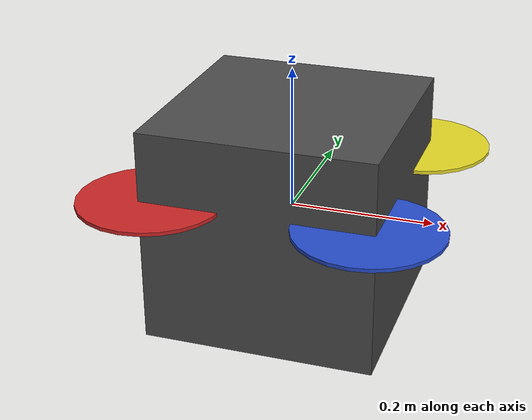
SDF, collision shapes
<?xml version='1.0'?>
<sdf version='1.6'>
  <model name='amov_solo'>
    <link name='base_link'>
      <pose>0 0 0 0 0 0</pose>
      <inertial>
        <pose>0 0 0 0 0 0</pose>
        <mass>1.2</mass>
        <inertia>
          <ixx>0.011</ixx>
          <ixy>0</ixy>
          <ixz>0</ixz>
          <iyy>0.011</iyy>
          <iyz>0</iyz>
          <izz>0.021</izz>
        </inertia>
      </inertial>
      <collision name='base_link_collision'>
        <pose>0 0 0 0 0 0</pose>
        <geometry>
          <box>
            <size>0.32 0.32 0.3</size>
          </box>
        </geometry>
        <surface>
          <contact>
            <ode>
              <min_depth>0.001</min_depth>
              <max_vel>0</max_vel>
            </ode>
          </contact>
          <friction>
            <ode/>
          </friction>
        </surface>
      </collision>
      <visual name='base_link_visual'>
	    <pose>0 0 0 0 0 0</pose>
        <geometry>
          <mesh>
	          <scale>1 1 1</scale>
            <uri>model://amov_solo/meshes/amov_solo.stl</uri>
          </mesh>
        </geometry>
        <material>
          <script>
            <name>Gazebo/DarkGrey</name>
          </script>
        </material>
      </visual>
      <gravity>1</gravity>
      <velocity_decay/>
      <self_collide>0</self_collide>
    </link>
    <link name='imu_link'>
      <pose>0 0 0 0 0 0</pose>
      <inertial>
        <pose>0 0 0 0 0 0</pose>
        <mass>0.015</mass>
        <inertia>
          <ixx>1e-05</ixx>
          <ixy>0</ixy>
          <ixz>0</ixz>
          <iyy>1e-05</iyy>
          <iyz>0</iyz>
          <izz>1e-05</izz>
        </inertia>
      </inertial>
    </link>
    <joint name='imu_joint' type='revolute'>
      <child>imu_link</child>
      <parent>base_link</parent>
      <axis>
        <xyz>1 0 0</xyz>
        <limit>
          <lower>0</lower>
          <upper>0</upper>
          <effort>0</effort>
          <velocity>0</velocity>
        </limit>
        <dynamics>
          <spring_reference>0</spring_reference>
          <spring_stiffness>0</spring_stiffness>
        </dynamics>
        <use_parent_model_frame>1</use_parent_model_frame>
      </axis>
    </joint>
    <!-- P300 rotors -->
    <link name='rotor_0'>
      <pose>0.14745 -0.14525 0.051 0 -0 0</pose>
      <inertial>
        <pose>0 0 0 0 -0 0</pose>
        <mass>0.01</mass>
        <inertia>
          <ixx>1e-06</ixx>
          <ixy>0</ixy>
          <ixz>0</ixz>
          <iyy>2e-04</iyy>
          <iyz>0</iyz>
          <izz>2e-04</izz>
        </inertia>
      </inertial>
      <collision name='rotor_0_collision'>
        <pose>0 0 0 0 0 0</pose>
        <geometry>
          <cylinder>
            <length>0.005</length>
            <radius>0.1</radius>
          </cylinder>
        </geometry>
        <surface>
          <contact>
            <ode/>
          </contact>
          <friction>
            <ode/>
          </friction>
        </surface>
      </collision>
      <visual name='rotor_0_visual'>
        <pose>-0.14745 -0.14525 -0.051 0 0 0</pose>
        <geometry>
          <mesh>
            <scale>1 1 1</scale>
            <uri>model://amov_solo/meshes/prop_ccw.stl</uri>
          </mesh>
        </geometry>
        <material>
          <script>
            <name>Gazebo/Blue</name>
            <uri>file://media/materials/scripts/gazebo.material</uri>
          </script>
        </material>
      </visual>
      <gravity>1</gravity>
      <velocity_decay/>
      <self_collide>0</self_collide>
    </link>
    <joint name='rotor_0_joint' type='revolute'>
      <child>rotor_0</child>
      <parent>base_link</parent>
      <axis>
        <xyz>0 0 1</xyz>
        <limit>
          <lower>-1e+16</lower>
          <upper>1e+16</upper>
        </limit>
        <dynamics>
          <damping>0.004</damping>
        </dynamics>
        <use_parent_model_frame>1</use_parent_model_frame>
      </axis>
      <physics>
        <ode>
          <implicit_spring_damper>1</implicit_spring_damper>
        </ode>
      </physics>
    </joint>
    <link name='rotor_1'>
      <pose>-0.14745 0.14525 0.051 0 0 0</pose>
      <inertial>
        <pose>0 0 0 0 -0 0</pose>
        <mass>0.01</mass>
        <inertia>
          <ixx>1e-06</ixx>
          <ixy>0</ixy>
          <ixz>0</ixz>
          <iyy>2e-04</iyy>
          <iyz>0</iyz>
          <izz>2e-04</izz>
        </inertia>
      </inertial>
      <collision name='rotor_1_collision'>
        <pose>0 0 0 0 -0 0</pose>
        <geometry>
          <cylinder>
            <length>0.005</length>
            <radius>0.1</radius>
          </cylinder>
        </geometry>
        <surface>
          <contact>
            <ode/>
          </contact>
          <friction>
            <ode/>
          </friction>
        </surface>
      </collision>
      <visual name='rotor_1_visual'>
        <pose>-0.14745 -0.14525 -0.051 0 0 0</pose>
        <geometry>
          <mesh>
            <scale>1 1 1</scale>
            <uri>model://amov_solo/meshes/prop_ccw.stl</uri>
          </mesh>
        </geometry>
        <material>
          <script>
            <name>Gazebo/Green</name>
            <uri>file://media/materials/scripts/gazebo.material</uri>
          </script>
        </material>
      </visual>
      <gravity>1</gravity>
      <velocity_decay/>
      <self_collide>0</self_collide>
    </link>
    <joint name='rotor_1_joint' type='revolute'>
      <child>rotor_1</child>
      <parent>base_link</parent>
      <axis>
        <xyz>0 0 1</xyz>
        <limit>
          <lower>-1e+16</lower>
          <upper>1e+16</upper>
        </limit>
        <dynamics>
          <damping>0.004</damping>
        </dynamics>
        <use_parent_model_frame>1</use_parent_model_frame>
      </axis>
      <physics>
        <ode>
          <implicit_spring_damper>1</implicit_spring_damper>
        </ode>
      </physics>
    </joint>
    <link name='rotor_2'>
      <pose>0.14745 0.14525 0.051 0 0 0</pose>
      <inertial>
        <pose>0 0 0 0 -0 0</pose>
        <mass>0.01</mass>
        <inertia>
          <ixx>1e-06</ixx>
          <ixy>0</ixy>
          <ixz>0</ixz>
          <iyy>2e-04</iyy>
          <iyz>0</iyz>
          <izz>2e-04</izz>
        </inertia>
      </inertial>
      <collision name='rotor_2_collision'>
        <pose>0 0 0 0 -0 0</pose>
        <geometry>
          <cylinder>
            <length>0.005</length>
            <radius>0.1</radius>
          </cylinder>
        </geometry>
        <surface>
          <contact>
            <ode/>
          </contact>
          <friction>
            <ode/>
          </friction>
        </surface>
      </collision>
      <visual name='rotor_2_visual'>
        <pose>-0.14745 0.14525 -0.051 0 0 0</pose>
        <geometry>
          <mesh>
            <scale>1 1 1</scale>
            <uri>model://amov_solo/meshes/prop_cw.stl</uri>
          </mesh>
        </geometry>
        <material>
          <script>
            <name>Gazebo/Yellow</name>
            <uri>file://media/materials/scripts/gazebo.material</uri>
          </script>
        </material>
      </visual>
      <gravity>1</gravity>
      <velocity_decay/>
      <self_collide>0</self_collide>
    </link>
    <joint name='rotor_2_joint' type='revolute'>
      <child>rotor_2</child>
      <parent>base_link</parent>
      <axis>
        <xyz>0 0 1</xyz>
        <limit>
          <lower>-1e+16</lower>
          <upper>1e+16</upper>
        </limit>
        <dynamics>
          <damping>0.004</damping>
        </dynamics>
        <use_parent_model_frame>1</use_parent_model_frame>
      </axis>
      <physics>
        <ode>
          <implicit_spring_damper>1</implicit_spring_damper>
        </ode>
      </physics>
    </joint>
    <link name='rotor_3'>
      <pose>-0.14745 -0.14525 0.051 0 0 0</pose>
      <inertial>
        <pose>0 0 0 0 -0 0</pose>
        <mass>0.01</mass>
        <inertia>
          <ixx>1e-06</ixx>
          <ixy>0</ixy>
          <ixz>0</ixz>
          <iyy>2e-04</iyy>
          <iyz>0</iyz>
          <izz>2e-04</izz>
        </inertia>
      </inertial>
      <collision name='rotor_3_collision'>
        <pose>0 0 0 0 -0 0</pose>
        <geometry>
          <cylinder>
            <length>0.005</length>
            <radius>0.1</radius>
          </cylinder>
        </geometry>
        <surface>
          <contact>
            <ode/>
          </contact>
          <friction>
            <ode/>
          </friction>
        </surface>
      </collision>
      <visual name='rotor_3_visual'>
        <pose>-0.14745 0.14525 -0.051 0 0 0</pose>
        <geometry>
          <mesh>
            <scale>1 1 1</scale>
            <uri>model://amov_solo/meshes/prop_cw.stl</uri>
          </mesh>
        </geometry>
        <material>
          <script>
            <name>Gazebo/Red</name>
            <uri>file://media/materials/scripts/gazebo.material</uri>
          </script>
        </material>
      </visual>
      <gravity>1</gravity>
      <velocity_decay/>
      <self_collide>0</self_collide>
    </link>
    <joint name='rotor_3_joint' type='revolute'>
      <child>rotor_3</child>
      <parent>base_link</parent>
      <axis>
        <xyz>0 0 1</xyz>
        <limit>
          <lower>-1e+16</lower>
          <upper>1e+16</upper>
        </limit>
        <dynamics>
          <damping>0.004</damping>
        </dynamics>
        <use_parent_model_frame>1</use_parent_model_frame>
      </axis>
      <physics>
        <ode>
          <implicit_spring_damper>1</implicit_spring_damper>
        </ode>
      </physics>
    </joint>
    <!-- plugins: not konwn -->
    <plugin name='rosbag' filename='libgazebo_multirotor_base_plugin.so'>
      <robotNamespace/>
      <linkName>base_link</linkName>
      <rotorVelocitySlowdownSim>10</rotorVelocitySlowdownSim>
      <motorPubTopic>motor_plugin_test</motorPubTopic>
    </plugin>
    <!-- plugins: motor model plugin for front_right_motor -->
    <!-- 电机模型 = 静态模型 + 动态模型 -->
    <!-- 订阅电机参考转速（来自mavlink_interface插件），然后计算力和力矩并作用于电机 -->
    <plugin name='front_right_motor_model' filename='libgazebo_motor_model.so'>
      <robotNamespace></robotNamespace>
      <jointName>rotor_0_joint</jointName>
      <linkName>rotor_0</linkName>
      <turningDirection>ccw</turningDirection>
      <timeConstantUp>0.0125</timeConstantUp>
      <timeConstantDown>0.025</timeConstantDown>
      <maxRotVelocity>1500</maxRotVelocity>
      <motorConstant>8.54858e-06</motorConstant>
      <momentConstant>0.06</momentConstant>
      <commandSubTopic>/gazebo/command/motor_speed</commandSubTopic>
      <motorNumber>0</motorNumber>
      <rotorDragCoefficient>0.000806428</rotorDragCoefficient>
      <rollingMomentCoefficient>1e-06</rollingMomentCoefficient>
      <motorSpeedPubTopic>/motor_speed/0</motorSpeedPubTopic>
      <rotorVelocitySlowdownSim>10</rotorVelocitySlowdownSim>
    </plugin>
    <!-- plugins: motor model plugin for back_left_motor -->
    <plugin name='back_left_motor_model' filename='libgazebo_motor_model.so'>
      <robotNamespace></robotNamespace>
      <jointName>rotor_1_joint</jointName>
      <linkName>rotor_1</linkName>
      <turningDirection>ccw</turningDirection>
      <timeConstantUp>0.0125</timeConstantUp>
      <timeConstantDown>0.025</timeConstantDown>
      <maxRotVelocity>1500</maxRotVelocity>
      <motorConstant>8.54858e-06</motorConstant>
      <momentConstant>0.06</momentConstant>
      <commandSubTopic>/gazebo/command/motor_speed</commandSubTopic>
      <motorNumber>1</motorNumber>
      <rotorDragCoefficient>0.000806428</rotorDragCoefficient>
      <rollingMomentCoefficient>1e-06</rollingMomentCoefficient>
      <motorSpeedPubTopic>/motor_speed/1</motorSpeedPubTopic>
      <rotorVelocitySlowdownSim>10</rotorVelocitySlowdownSim>
    </plugin>
    <!-- plugins: motor model plugin for front_left_motor -->
    <plugin name='front_left_motor_model' filename='libgazebo_motor_model.so'>
      <robotNamespace></robotNamespace>
      <jointName>rotor_2_joint</jointName>
      <linkName>rotor_2</linkName>
      <turningDirection>cw</turningDirection>
      <timeConstantUp>0.0125</timeConstantUp>
      <timeConstantDown>0.025</timeConstantDown>
      <maxRotVelocity>1500</maxRotVelocity>
      <motorConstant>8.54858e-06</motorConstant>
      <momentConstant>0.06</momentConstant>
      <commandSubTopic>/gazebo/command/motor_speed</commandSubTopic>
      <motorNumber>2</motorNumber>
      <rotorDragCoefficient>0.000806428</rotorDragCoefficient>
      <rollingMomentCoefficient>1e-06</rollingMomentCoefficient>
      <motorSpeedPubTopic>/motor_speed/2</motorSpeedPubTopic>
      <rotorVelocitySlowdownSim>10</rotorVelocitySlowdownSim>
    </plugin>
    <!-- plugins: motor model plugin for back_right_motor -->
    <plugin name='back_right_motor_model' filename='libgazebo_motor_model.so'>
      <robotNamespace></robotNamespace>
      <jointName>rotor_3_joint</jointName>
      <linkName>rotor_3</linkName>
      <turningDirection>cw</turningDirection>
      <timeConstantUp>0.0125</timeConstantUp>
      <timeConstantDown>0.025</timeConstantDown>
      <maxRotVelocity>1500</maxRotVelocity>
      <motorConstant>8.54858e-06</motorConstant>
      <momentConstant>0.06</momentConstant>
      <commandSubTopic>/gazebo/command/motor_speed</commandSubTopic>
      <motorNumber>3</motorNumber>
      <rotorDragCoefficient>0.000806428</rotorDragCoefficient>
      <rollingMomentCoefficient>1e-06</rollingMomentCoefficient>
      <motorSpeedPubTopic>/motor_speed/3</motorSpeedPubTopic>
      <rotorVelocitySlowdownSim>10</rotorVelocitySlowdownSim>
    </plugin>
    <!-- plugins: GPS plugin -->
    <!-- 模拟GPS模型，发布GPS数据（/.../gps）及地面真值（/.../groundtruth） -->
    <plugin name="gps_plugin" filename="libgazebo_gps_plugin.so">
        <robotNamespace></robotNamespace>
        <gpsNoise>false</gpsNoise>
    </plugin>
    <!-- plugins: magnetometer plugin -->
    <plugin name='magnetometer_plugin' filename='libgazebo_magnetometer_plugin.so'>
      <robotNamespace/>
      <pubRate>20</pubRate>
      <noiseDensity>0.0004</noiseDensity>
      <randomWalk>6.4e-06</randomWalk>
      <biasCorrelationTime>600</biasCorrelationTime>
      <magTopic>/mag</magTopic>
    </plugin>
    <!-- plugins: barometer plugin -->
    <plugin name='barometer_plugin' filename='libgazebo_barometer_plugin.so'>
      <robotNamespace/>
      <pubRate>10</pubRate>
      <baroTopic>/baro</baroTopic>
    </plugin>
    <!-- plugins: mavlink plugin -->
    <!-- 使用mavlink消息交互的插件 -->
    <!-- 发布电机参考速度，来自飞控 -->
    <!-- 订阅各传感器数据，发送至飞控 -->
    <plugin name='mavlink_interface' filename='libgazebo_mavlink_interface.so'>
      <robotNamespace/>
      <imuSubTopic>/imu</imuSubTopic>
      <gpsSubTopic>/gps</gpsSubTopic>
      <magSubTopic>/mag</magSubTopic>
      <baroSubTopic>/baro</baroSubTopic>
      <mavlink_addr>INADDR_ANY</mavlink_addr>
      <mavlink_udp_port>14560</mavlink_udp_port>
      <mavlink_tcp_port>4560</mavlink_tcp_port>
      <serialEnabled>false</serialEnabled>
      <serialDevice>/dev/ttyACM0</serialDevice>
      <baudRate>921600</baudRate>
      <qgc_addr>INADDR_ANY</qgc_addr>
      <qgc_udp_port>14550</qgc_udp_port>
      <hil_mode>false</hil_mode>
      <hil_state_level>false</hil_state_level>
      <enable_lockstep>true</enable_lockstep>
      <use_tcp>true</use_tcp>
      <motorSpeedCommandPubTopic>/gazebo/command/motor_speed</motorSpeedCommandPubTopic>
      <control_channels>
        <channel name='rotor1'>
          <input_index>0</input_index>
          <input_offset>0</input_offset>
          <input_scaling>1200</input_scaling>
          <zero_position_disarmed>0</zero_position_disarmed>
          <zero_position_armed>100</zero_position_armed>
          <joint_control_type>velocity</joint_control_type>
        </channel>
        <channel name='rotor2'>
          <input_index>1</input_index>
          <input_offset>0</input_offset>
          <input_scaling>1200</input_scaling>
          <zero_position_disarmed>0</zero_position_disarmed>
          <zero_position_armed>100</zero_position_armed>
          <joint_control_type>velocity</joint_control_type>
        </channel>
        <channel name='rotor3'>
          <input_index>2</input_index>
          <input_offset>0</input_offset>
          <input_scaling>1200</input_scaling>
          <zero_position_disarmed>0</zero_position_disarmed>
          <zero_position_armed>100</zero_position_armed>
          <joint_control_type>velocity</joint_control_type>
        </channel>
        <channel name='rotor4'>
          <input_index>3</input_index>
          <input_offset>0</input_offset>
          <input_scaling>1200</input_scaling>
          <zero_position_disarmed>0</zero_position_disarmed>
          <zero_position_armed>100</zero_position_armed>
          <joint_control_type>velocity</joint_control_type>
        </channel>
      </control_channels>
    </plugin>
    <!-- plugins: imu plugin -->
    <!-- 产生imu数据 -->
    <plugin name='gazebo_imu_plugin' filename='libgazebo_imu_plugin.so'>
      <robotNamespace></robotNamespace>
      <linkName>imu_link</linkName>
      <imuTopic>/imu</imuTopic>
      <gyroscopeNoiseDensity>0.0003394</gyroscopeNoiseDensity>
      <gyroscopeRandomWalk>3.8785e-05</gyroscopeRandomWalk>
      <gyroscopeBiasCorrelationTime>1000.0</gyroscopeBiasCorrelationTime>
      <gyroscopeTurnOnBiasSigma>0.0087</gyroscopeTurnOnBiasSigma>
      <accelerometerNoiseDensity>0.004</accelerometerNoiseDensity>
      <accelerometerRandomWalk>0.006</accelerometerRandomWalk>
      <accelerometerBiasCorrelationTime>300.0</accelerometerBiasCorrelationTime>
      <accelerometerTurnOnBiasSigma>0.196</accelerometerTurnOnBiasSigma>
    </plugin>
    <!-- plugins: libgazebo_ros_p3d -->
    <!-- 发布真值,模拟vicon系统 -->
    <plugin name="p3d_base_controller" filename="libgazebo_ros_p3d.so">
      <alwaysOn>true</alwaysOn>
      <updateRate>50.0</updateRate>
      <bodyName>base_link</bodyName>
      <topicName>/prometheus/ground_truth/p300_basic</topicName>
      <gaussianNoise>0.00</gaussianNoise>
      <frameName>world</frameName>
      <xyzOffsets>0 0 0</xyzOffsets>
      <rpyOffsets>0 0 0</rpyOffsets>
    </plugin>
  </model>
</sdf>
